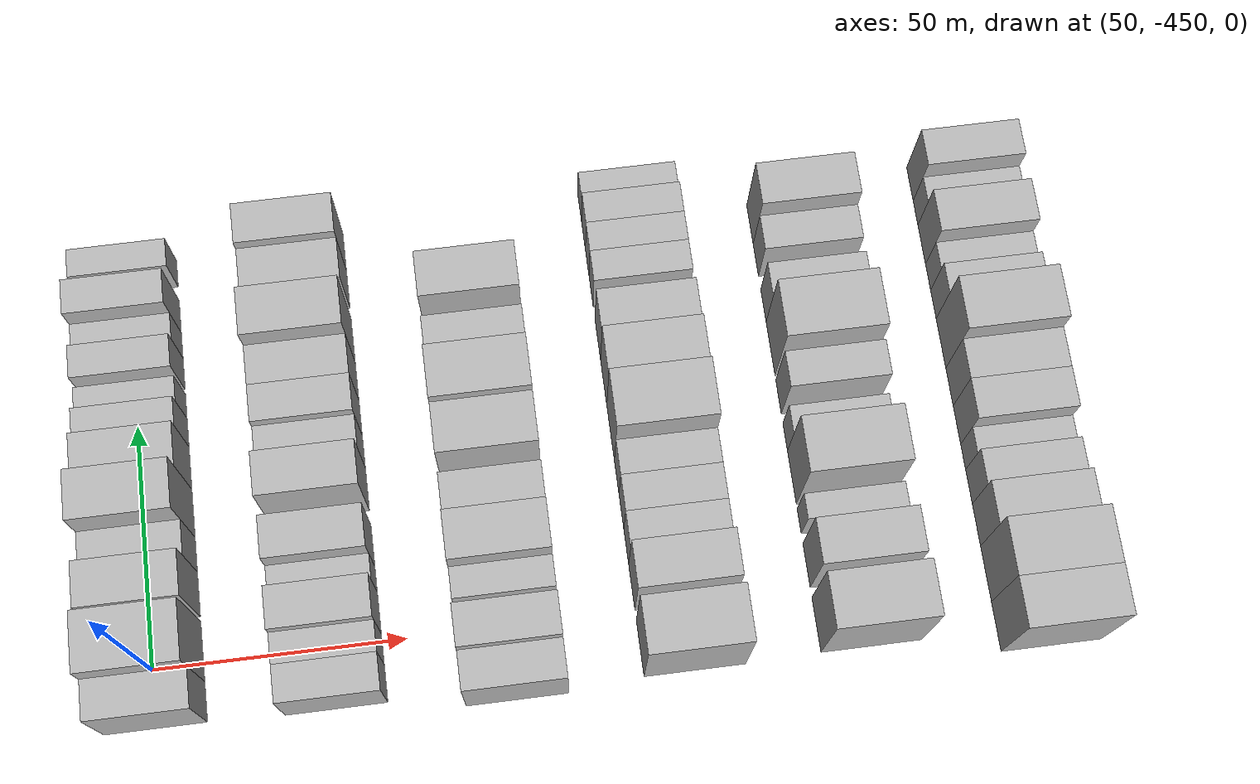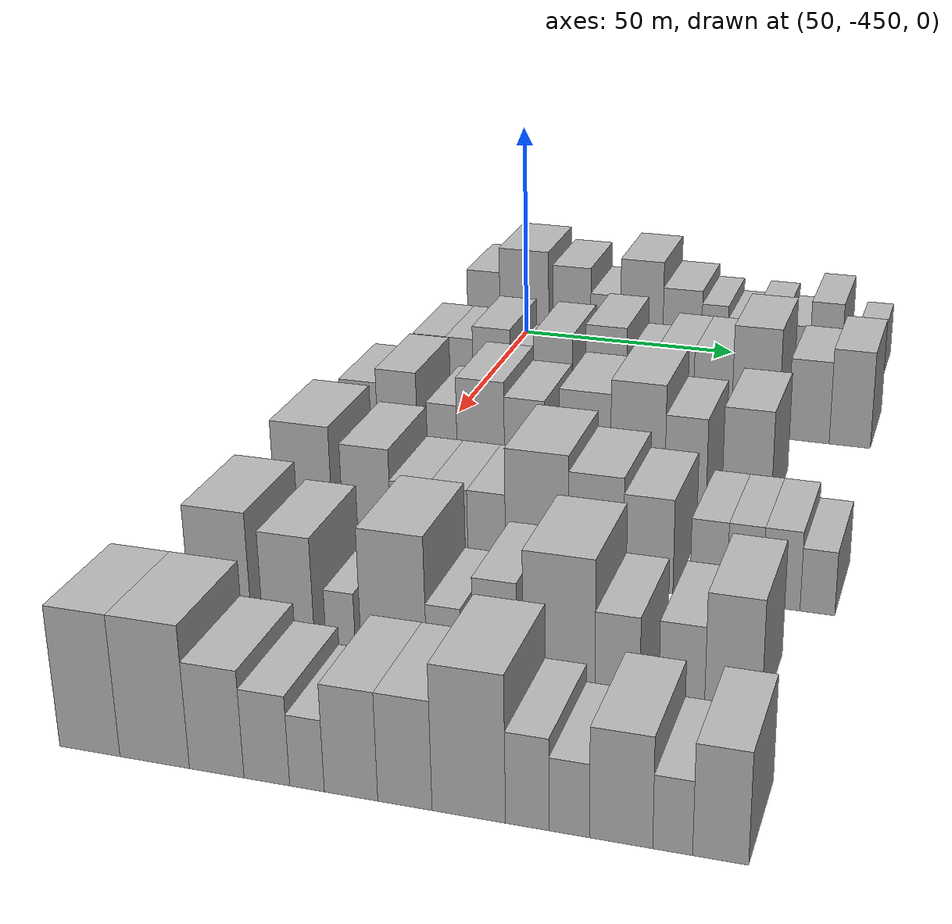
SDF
<sdf version="1.6">
 <world name="default">
  <model name="building_14">
   <static>1</static>
   <pose>50.0000 -457.3623 0 0.000000 0.000000 0.000000</pose>
   <link name="link">
    <pose>0 0 9.00 0 0 0</pose>
    <collision name="collision"><geometry><box><size>20.0000 7.9237 18.0000</size></box></geometry></collision>
    <visual name="visual">
     <cast_shadows>0</cast_shadows>
     <geometry><box><size>20.0000 7.9237 18.0000</size></box></geometry>
     <material>
      <script>
       <uri>model://HANNAS_wall/materials/scripts</uri>
       <uri>model://HANNAS_wall/materials/textures</uri>
       <name>vrc/HANNAS_wall</name>
      </script>
     </material>
    </visual>
   </link>
  </model>
  <model name="building_15">
   <static>1</static>
   <pose>50.0000 -447.4712 0 0.000000 0.000000 0.000000</pose>
   <link name="link">
    <pose>0 0 12.00 0 0 0</pose>
    <collision name="collision"><geometry><box><size>20.0000 11.8585 24.0000</size></box></geometry></collision>
    <visual name="visual">
     <cast_shadows>0</cast_shadows>
     <geometry><box><size>20.0000 11.8585 24.0000</size></box></geometry>
     <material>
      <script>
       <uri>model://HANNAS_wall/materials/scripts</uri>
       <uri>model://HANNAS_wall/materials/textures</uri>
       <name>vrc/HANNAS_wall</name>
      </script>
     </material>
    </visual>
   </link>
  </model>
  <model name="building_16">
   <static>1</static>
   <pose>50.0000 -436.0148 0 0.000000 0.000000 0.000000</pose>
   <link name="link">
    <pose>0 0 10.50 0 0 0</pose>
    <collision name="collision"><geometry><box><size>20.0000 9.0544 21.0000</size></box></geometry></collision>
    <visual name="visual">
     <cast_shadows>0</cast_shadows>
     <geometry><box><size>20.0000 9.0544 21.0000</size></box></geometry>
     <material>
      <script>
       <uri>model://HANNAS_wall/materials/scripts</uri>
       <uri>model://HANNAS_wall/materials/textures</uri>
       <name>vrc/HANNAS_wall</name>
      </script>
     </material>
    </visual>
   </link>
  </model>
  <model name="building_17">
   <static>1</static>
   <pose>50.0000 -427.9351 0 0.000000 0.000000 0.000000</pose>
   <link name="link">
    <pose>0 0 7.50 0 0 0</pose>
    <collision name="collision"><geometry><box><size>20.0000 7.1049 15.0000</size></box></geometry></collision>
    <visual name="visual">
     <cast_shadows>0</cast_shadows>
     <geometry><box><size>20.0000 7.1049 15.0000</size></box></geometry>
     <material>
      <script>
       <uri>model://HANNAS_wall/materials/scripts</uri>
       <uri>model://HANNAS_wall/materials/textures</uri>
       <name>vrc/HANNAS_wall</name>
      </script>
     </material>
    </visual>
   </link>
  </model>
  <model name="building_18">
   <static>1</static>
   <pose>50.0000 -419.4042 0 0.000000 0.000000 0.000000</pose>
   <link name="link">
    <pose>0 0 12.00 0 0 0</pose>
    <collision name="collision"><geometry><box><size>20.0000 9.9570 24.0000</size></box></geometry></collision>
    <visual name="visual">
     <cast_shadows>0</cast_shadows>
     <geometry><box><size>20.0000 9.9570 24.0000</size></box></geometry>
     <material>
      <script>
       <uri>model://HANNAS_wall/materials/scripts</uri>
       <uri>model://HANNAS_wall/materials/textures</uri>
       <name>vrc/HANNAS_wall</name>
      </script>
     </material>
    </visual>
   </link>
  </model>
  <model name="building_19">
   <static>1</static>
   <pose>50.0000 -409.9322 0 0.000000 0.000000 0.000000</pose>
   <link name="link">
    <pose>0 0 9.00 0 0 0</pose>
    <collision name="collision"><geometry><box><size>20.0000 8.9870 18.0000</size></box></geometry></collision>
    <visual name="visual">
     <cast_shadows>0</cast_shadows>
     <geometry><box><size>20.0000 8.9870 18.0000</size></box></geometry>
     <material>
      <script>
       <uri>model://HANNAS_wall/materials/scripts</uri>
       <uri>model://HANNAS_wall/materials/textures</uri>
       <name>vrc/HANNAS_wall</name>
      </script>
     </material>
    </visual>
   </link>
  </model>
  <model name="building_20">
   <static>1</static>
   <pose>50.0000 -402.4324 0 0.000000 0.000000 0.000000</pose>
   <link name="link">
    <pose>0 0 7.50 0 0 0</pose>
    <collision name="collision"><geometry><box><size>20.0000 6.0127 15.0000</size></box></geometry></collision>
    <visual name="visual">
     <cast_shadows>0</cast_shadows>
     <geometry><box><size>20.0000 6.0127 15.0000</size></box></geometry>
     <material>
      <script>
       <uri>model://HANNAS_wall/materials/scripts</uri>
       <uri>model://HANNAS_wall/materials/textures</uri>
       <name>vrc/HANNAS_wall</name>
      </script>
     </material>
    </visual>
   </link>
  </model>
  <model name="building_21">
   <static>1</static>
   <pose>50.0000 -396.7875 0 0.000000 0.000000 0.000000</pose>
   <link name="link">
    <pose>0 0 6.00 0 0 0</pose>
    <collision name="collision"><geometry><box><size>20.0000 5.2770 12.0000</size></box></geometry></collision>
    <visual name="visual">
     <cast_shadows>0</cast_shadows>
     <geometry><box><size>20.0000 5.2770 12.0000</size></box></geometry>
     <material>
      <script>
       <uri>model://HANNAS_wall/materials/scripts</uri>
       <uri>model://HANNAS_wall/materials/textures</uri>
       <name>vrc/HANNAS_wall</name>
      </script>
     </material>
    </visual>
   </link>
  </model>
  <model name="building_22">
   <static>1</static>
   <pose>50.0000 -389.7473 0 0.000000 0.000000 0.000000</pose>
   <link name="link">
    <pose>0 0 7.50 0 0 0</pose>
    <collision name="collision"><geometry><box><size>20.0000 6.8035 15.0000</size></box></geometry></collision>
    <visual name="visual">
     <cast_shadows>0</cast_shadows>
     <geometry><box><size>20.0000 6.8035 15.0000</size></box></geometry>
     <material>
      <script>
       <uri>model://HANNAS_wall/materials/scripts</uri>
       <uri>model://HANNAS_wall/materials/textures</uri>
       <name>vrc/HANNAS_wall</name>
      </script>
     </material>
    </visual>
   </link>
  </model>
  <model name="building_23">
   <static>1</static>
   <pose>50.0000 -383.5608 0 0.000000 0.000000 0.000000</pose>
   <link name="link">
    <pose>0 0 6.00 0 0 0</pose>
    <collision name="collision"><geometry><box><size>20.0000 5.5695 12.0000</size></box></geometry></collision>
    <visual name="visual">
     <cast_shadows>0</cast_shadows>
     <geometry><box><size>20.0000 5.5695 12.0000</size></box></geometry>
     <material>
      <script>
       <uri>model://HANNAS_wall/materials/scripts</uri>
       <uri>model://HANNAS_wall/materials/textures</uri>
       <name>vrc/HANNAS_wall</name>
      </script>
     </material>
    </visual>
   </link>
  </model>
  <model name="building_24">
   <static>1</static>
   <pose>50.0000 -377.1747 0 0.000000 0.000000 0.000000</pose>
   <link name="link">
    <pose>0 0 9.00 0 0 0</pose>
    <collision name="collision"><geometry><box><size>20.0000 7.2027 18.0000</size></box></geometry></collision>
    <visual name="visual">
     <cast_shadows>0</cast_shadows>
     <geometry><box><size>20.0000 7.2027 18.0000</size></box></geometry>
     <material>
      <script>
       <uri>model://HANNAS_wall/materials/scripts</uri>
       <uri>model://HANNAS_wall/materials/textures</uri>
       <name>vrc/HANNAS_wall</name>
      </script>
     </material>
    </visual>
   </link>
  </model>
  <model name="building_25">
   <static>1</static>
   <pose>50.0000 -367.6038 0 0.000000 0.000000 0.000000</pose>
   <link name="link">
    <pose>0 0 6.00 0 0 0</pose>
    <collision name="collision"><geometry><box><size>20.0000 5.9390 12.0000</size></box></geometry></collision>
    <visual name="visual">
     <cast_shadows>0</cast_shadows>
     <geometry><box><size>20.0000 5.9390 12.0000</size></box></geometry>
     <material>
      <script>
       <uri>model://HANNAS_wall/materials/scripts</uri>
       <uri>model://HANNAS_wall/materials/textures</uri>
       <name>vrc/HANNAS_wall</name>
      </script>
     </material>
    </visual>
   </link>
  </model>
  <model name="building_148">
   <static>1</static>
   <pose>85.0000 -458.2104 0 0.000000 0.000000 0.000000</pose>
   <link name="link">
    <pose>0 0 7.50 0 0 0</pose>
    <collision name="collision"><geometry><box><size>20.0000 7.3771 15.0000</size></box></geometry></collision>
    <visual name="visual">
     <cast_shadows>0</cast_shadows>
     <geometry><box><size>20.0000 7.3771 15.0000</size></box></geometry>
     <material>
      <script>
       <uri>model://HANNAS_wall/materials/scripts</uri>
       <uri>model://HANNAS_wall/materials/textures</uri>
       <name>vrc/HANNAS_wall</name>
      </script>
     </material>
    </visual>
   </link>
  </model>
  <model name="building_149">
   <static>1</static>
   <pose>85.0000 -451.4634 0 0.000000 0.000000 0.000000</pose>
   <link name="link">
    <pose>0 0 7.50 0 0 0</pose>
    <collision name="collision"><geometry><box><size>20.0000 6.1169 15.0000</size></box></geometry></collision>
    <visual name="visual">
     <cast_shadows>0</cast_shadows>
     <geometry><box><size>20.0000 6.1169 15.0000</size></box></geometry>
     <material>
      <script>
       <uri>model://HANNAS_wall/materials/scripts</uri>
       <uri>model://HANNAS_wall/materials/textures</uri>
       <name>vrc/HANNAS_wall</name>
      </script>
     </material>
    </visual>
   </link>
  </model>
  <model name="building_150">
   <static>1</static>
   <pose>85.0000 -444.2012 0 0.000000 0.000000 0.000000</pose>
   <link name="link">
    <pose>0 0 9.00 0 0 0</pose>
    <collision name="collision"><geometry><box><size>20.0000 8.4076 18.0000</size></box></geometry></collision>
    <visual name="visual">
     <cast_shadows>0</cast_shadows>
     <geometry><box><size>20.0000 8.4076 18.0000</size></box></geometry>
     <material>
      <script>
       <uri>model://HANNAS_wall/materials/scripts</uri>
       <uri>model://HANNAS_wall/materials/textures</uri>
       <name>vrc/HANNAS_wall</name>
      </script>
     </material>
    </visual>
   </link>
  </model>
  <model name="building_151">
   <static>1</static>
   <pose>85.0000 -437.3884 0 0.000000 0.000000 0.000000</pose>
   <link name="link">
    <pose>0 0 6.00 0 0 0</pose>
    <collision name="collision"><geometry><box><size>20.0000 5.2180 12.0000</size></box></geometry></collision>
    <visual name="visual">
     <cast_shadows>0</cast_shadows>
     <geometry><box><size>20.0000 5.2180 12.0000</size></box></geometry>
     <material>
      <script>
       <uri>model://HANNAS_wall/materials/scripts</uri>
       <uri>model://HANNAS_wall/materials/textures</uri>
       <name>vrc/HANNAS_wall</name>
      </script>
     </material>
    </visual>
   </link>
  </model>
  <model name="building_152">
   <static>1</static>
   <pose>85.0000 -430.5078 0 0.000000 0.000000 0.000000</pose>
   <link name="link">
    <pose>0 0 9.00 0 0 0</pose>
    <collision name="collision"><geometry><box><size>20.0000 8.5432 18.0000</size></box></geometry></collision>
    <visual name="visual">
     <cast_shadows>0</cast_shadows>
     <geometry><box><size>20.0000 8.5432 18.0000</size></box></geometry>
     <material>
      <script>
       <uri>model://HANNAS_wall/materials/scripts</uri>
       <uri>model://HANNAS_wall/materials/textures</uri>
       <name>vrc/HANNAS_wall</name>
      </script>
     </material>
    </visual>
   </link>
  </model>
  <model name="building_153">
   <static>1</static>
   <pose>85.0000 -418.7952 0 0.000000 0.000000 0.000000</pose>
   <link name="link">
    <pose>0 0 10.50 0 0 0</pose>
    <collision name="collision"><geometry><box><size>20.0000 8.8820 21.0000</size></box></geometry></collision>
    <visual name="visual">
     <cast_shadows>0</cast_shadows>
     <geometry><box><size>20.0000 8.8820 21.0000</size></box></geometry>
     <material>
      <script>
       <uri>model://HANNAS_wall/materials/scripts</uri>
       <uri>model://HANNAS_wall/materials/textures</uri>
       <name>vrc/HANNAS_wall</name>
      </script>
     </material>
    </visual>
   </link>
  </model>
  <model name="building_154">
   <static>1</static>
   <pose>85.0000 -410.9439 0 0.000000 0.000000 0.000000</pose>
   <link name="link">
    <pose>0 0 7.50 0 0 0</pose>
    <collision name="collision"><geometry><box><size>20.0000 6.8206 15.0000</size></box></geometry></collision>
    <visual name="visual">
     <cast_shadows>0</cast_shadows>
     <geometry><box><size>20.0000 6.8206 15.0000</size></box></geometry>
     <material>
      <script>
       <uri>model://HANNAS_wall/materials/scripts</uri>
       <uri>model://HANNAS_wall/materials/textures</uri>
       <name>vrc/HANNAS_wall</name>
      </script>
     </material>
    </visual>
   </link>
  </model>
  <model name="building_155">
   <static>1</static>
   <pose>85.0000 -403.7427 0 0.000000 0.000000 0.000000</pose>
   <link name="link">
    <pose>0 0 9.00 0 0 0</pose>
    <collision name="collision"><geometry><box><size>20.0000 7.5818 18.0000</size></box></geometry></collision>
    <visual name="visual">
     <cast_shadows>0</cast_shadows>
     <geometry><box><size>20.0000 7.5818 18.0000</size></box></geometry>
     <material>
      <script>
       <uri>model://HANNAS_wall/materials/scripts</uri>
       <uri>model://HANNAS_wall/materials/textures</uri>
       <name>vrc/HANNAS_wall</name>
      </script>
     </material>
    </visual>
   </link>
  </model>
  <model name="building_156">
   <static>1</static>
   <pose>85.0000 -395.8663 0 0.000000 0.000000 0.000000</pose>
   <link name="link">
    <pose>0 0 9.00 0 0 0</pose>
    <collision name="collision"><geometry><box><size>20.0000 8.1711 18.0000</size></box></geometry></collision>
    <visual name="visual">
     <cast_shadows>0</cast_shadows>
     <geometry><box><size>20.0000 8.1711 18.0000</size></box></geometry>
     <material>
      <script>
       <uri>model://HANNAS_wall/materials/scripts</uri>
       <uri>model://HANNAS_wall/materials/textures</uri>
       <name>vrc/HANNAS_wall</name>
      </script>
     </material>
    </visual>
   </link>
  </model>
  <model name="building_157">
   <static>1</static>
   <pose>85.0000 -386.8179 0 0.000000 0.000000 0.000000</pose>
   <link name="link">
    <pose>0 0 12.00 0 0 0</pose>
    <collision name="collision"><geometry><box><size>20.0000 9.9256 24.0000</size></box></geometry></collision>
    <visual name="visual">
     <cast_shadows>0</cast_shadows>
     <geometry><box><size>20.0000 9.9256 24.0000</size></box></geometry>
     <material>
      <script>
       <uri>model://HANNAS_wall/materials/scripts</uri>
       <uri>model://HANNAS_wall/materials/textures</uri>
       <name>vrc/HANNAS_wall</name>
      </script>
     </material>
    </visual>
   </link>
  </model>
  <model name="building_158">
   <static>1</static>
   <pose>85.0000 -375.5778 0 0.000000 0.000000 0.000000</pose>
   <link name="link">
    <pose>0 0 9.00 0 0 0</pose>
    <collision name="collision"><geometry><box><size>20.0000 8.5546 18.0000</size></box></geometry></collision>
    <visual name="visual">
     <cast_shadows>0</cast_shadows>
     <geometry><box><size>20.0000 8.5546 18.0000</size></box></geometry>
     <material>
      <script>
       <uri>model://HANNAS_wall/materials/scripts</uri>
       <uri>model://HANNAS_wall/materials/textures</uri>
       <name>vrc/HANNAS_wall</name>
      </script>
     </material>
    </visual>
   </link>
  </model>
  <model name="building_159">
   <static>1</static>
   <pose>85.0000 -367.0770 0 0.000000 0.000000 0.000000</pose>
   <link name="link">
    <pose>0 0 10.50 0 0 0</pose>
    <collision name="collision"><geometry><box><size>20.0000 8.4471 21.0000</size></box></geometry></collision>
    <visual name="visual">
     <cast_shadows>0</cast_shadows>
     <geometry><box><size>20.0000 8.4471 21.0000</size></box></geometry>
     <material>
      <script>
       <uri>model://HANNAS_wall/materials/scripts</uri>
       <uri>model://HANNAS_wall/materials/textures</uri>
       <name>vrc/HANNAS_wall</name>
      </script>
     </material>
    </visual>
   </link>
  </model>
  <model name="building_269">
   <static>1</static>
   <pose>120.0000 -460.6186 0 0.000000 0.000000 0.000000</pose>
   <link name="link">
    <pose>0 0 9.00 0 0 0</pose>
    <collision name="collision"><geometry><box><size>20.0000 7.7747 18.0000</size></box></geometry></collision>
    <visual name="visual">
     <cast_shadows>0</cast_shadows>
     <geometry><box><size>20.0000 7.7747 18.0000</size></box></geometry>
     <material>
      <script>
       <uri>model://HANNAS_wall/materials/scripts</uri>
       <uri>model://HANNAS_wall/materials/textures</uri>
       <name>vrc/HANNAS_wall</name>
      </script>
     </material>
    </visual>
   </link>
  </model>
  <model name="building_270">
   <static>1</static>
   <pose>120.0000 -452.5234 0 0.000000 0.000000 0.000000</pose>
   <link name="link">
    <pose>0 0 10.50 0 0 0</pose>
    <collision name="collision"><geometry><box><size>20.0000 8.4158 21.0000</size></box></geometry></collision>
    <visual name="visual">
     <cast_shadows>0</cast_shadows>
     <geometry><box><size>20.0000 8.4158 21.0000</size></box></geometry>
     <material>
      <script>
       <uri>model://HANNAS_wall/materials/scripts</uri>
       <uri>model://HANNAS_wall/materials/textures</uri>
       <name>vrc/HANNAS_wall</name>
      </script>
     </material>
    </visual>
   </link>
  </model>
  <model name="building_271">
   <static>1</static>
   <pose>120.0000 -443.2011 0 0.000000 0.000000 0.000000</pose>
   <link name="link">
    <pose>0 0 7.50 0 0 0</pose>
    <collision name="collision"><geometry><box><size>20.0000 6.2288 15.0000</size></box></geometry></collision>
    <visual name="visual">
     <cast_shadows>0</cast_shadows>
     <geometry><box><size>20.0000 6.2288 15.0000</size></box></geometry>
     <material>
      <script>
       <uri>model://HANNAS_wall/materials/scripts</uri>
       <uri>model://HANNAS_wall/materials/textures</uri>
       <name>vrc/HANNAS_wall</name>
      </script>
     </material>
    </visual>
   </link>
  </model>
  <model name="building_272">
   <static>1</static>
   <pose>120.0000 -435.1914 0 0.000000 0.000000 0.000000</pose>
   <link name="link">
    <pose>0 0 10.50 0 0 0</pose>
    <collision name="collision"><geometry><box><size>20.0000 9.7905 21.0000</size></box></geometry></collision>
    <visual name="visual">
     <cast_shadows>0</cast_shadows>
     <geometry><box><size>20.0000 9.7905 21.0000</size></box></geometry>
     <material>
      <script>
       <uri>model://HANNAS_wall/materials/scripts</uri>
       <uri>model://HANNAS_wall/materials/textures</uri>
       <name>vrc/HANNAS_wall</name>
      </script>
     </material>
    </visual>
   </link>
  </model>
  <model name="building_273">
   <static>1</static>
   <pose>120.0000 -426.2014 0 0.000000 0.000000 0.000000</pose>
   <link name="link">
    <pose>0 0 9.00 0 0 0</pose>
    <collision name="collision"><geometry><box><size>20.0000 8.1894 18.0000</size></box></geometry></collision>
    <visual name="visual">
     <cast_shadows>0</cast_shadows>
     <geometry><box><size>20.0000 8.1894 18.0000</size></box></geometry>
     <material>
      <script>
       <uri>model://HANNAS_wall/materials/scripts</uri>
       <uri>model://HANNAS_wall/materials/textures</uri>
       <name>vrc/HANNAS_wall</name>
      </script>
     </material>
    </visual>
   </link>
  </model>
  <model name="building_274">
   <static>1</static>
   <pose>120.0000 -413.9976 0 0.000000 0.000000 0.000000</pose>
   <link name="link">
    <pose>0 0 10.50 0 0 0</pose>
    <collision name="collision"><geometry><box><size>20.0000 10.2182 21.0000</size></box></geometry></collision>
    <visual name="visual">
     <cast_shadows>0</cast_shadows>
     <geometry><box><size>20.0000 10.2182 21.0000</size></box></geometry>
     <material>
      <script>
       <uri>model://HANNAS_wall/materials/scripts</uri>
       <uri>model://HANNAS_wall/materials/textures</uri>
       <name>vrc/HANNAS_wall</name>
      </script>
     </material>
    </visual>
   </link>
  </model>
  <model name="building_275">
   <static>1</static>
   <pose>120.0000 -403.5157 0 0.000000 0.000000 0.000000</pose>
   <link name="link">
    <pose>0 0 12.00 0 0 0</pose>
    <collision name="collision"><geometry><box><size>20.0000 10.7457 24.0000</size></box></geometry></collision>
    <visual name="visual">
     <cast_shadows>0</cast_shadows>
     <geometry><box><size>20.0000 10.7457 24.0000</size></box></geometry>
     <material>
      <script>
       <uri>model://HANNAS_wall/materials/scripts</uri>
       <uri>model://HANNAS_wall/materials/textures</uri>
       <name>vrc/HANNAS_wall</name>
      </script>
     </material>
    </visual>
   </link>
  </model>
  <model name="building_276">
   <static>1</static>
   <pose>120.0000 -394.0708 0 0.000000 0.000000 0.000000</pose>
   <link name="link">
    <pose>0 0 9.00 0 0 0</pose>
    <collision name="collision"><geometry><box><size>20.0000 8.1440 18.0000</size></box></geometry></collision>
    <visual name="visual">
     <cast_shadows>0</cast_shadows>
     <geometry><box><size>20.0000 8.1440 18.0000</size></box></geometry>
     <material>
      <script>
       <uri>model://HANNAS_wall/materials/scripts</uri>
       <uri>model://HANNAS_wall/materials/textures</uri>
       <name>vrc/HANNAS_wall</name>
      </script>
     </material>
    </visual>
   </link>
  </model>
  <model name="building_277">
   <static>1</static>
   <pose>120.0000 -382.2426 0 0.000000 0.000000 0.000000</pose>
   <link name="link">
    <pose>0 0 10.50 0 0 0</pose>
    <collision name="collision"><geometry><box><size>20.0000 9.5125 21.0000</size></box></geometry></collision>
    <visual name="visual">
     <cast_shadows>0</cast_shadows>
     <geometry><box><size>20.0000 9.5125 21.0000</size></box></geometry>
     <material>
      <script>
       <uri>model://HANNAS_wall/materials/scripts</uri>
       <uri>model://HANNAS_wall/materials/textures</uri>
       <name>vrc/HANNAS_wall</name>
      </script>
     </material>
    </visual>
   </link>
  </model>
  <model name="building_381">
   <static>1</static>
   <pose>155.0000 -457.5387 0 0.000000 0.000000 0.000000</pose>
   <link name="link">
    <pose>0 0 12.00 0 0 0</pose>
    <collision name="collision"><geometry><box><size>20.0000 11.2231 24.0000</size></box></geometry></collision>
    <visual name="visual">
     <cast_shadows>0</cast_shadows>
     <geometry><box><size>20.0000 11.2231 24.0000</size></box></geometry>
     <material>
      <script>
       <uri>model://HANNAS_wall/materials/scripts</uri>
       <uri>model://HANNAS_wall/materials/textures</uri>
       <name>vrc/HANNAS_wall</name>
      </script>
     </material>
    </visual>
   </link>
  </model>
  <model name="building_382">
   <static>1</static>
   <pose>155.0000 -445.2981 0 0.000000 0.000000 0.000000</pose>
   <link name="link">
    <pose>0 0 10.50 0 0 0</pose>
    <collision name="collision"><geometry><box><size>20.0000 9.2580 21.0000</size></box></geometry></collision>
    <visual name="visual">
     <cast_shadows>0</cast_shadows>
     <geometry><box><size>20.0000 9.2580 21.0000</size></box></geometry>
     <material>
      <script>
       <uri>model://HANNAS_wall/materials/scripts</uri>
       <uri>model://HANNAS_wall/materials/textures</uri>
       <name>vrc/HANNAS_wall</name>
      </script>
     </material>
    </visual>
   </link>
  </model>
  <model name="building_383">
   <static>1</static>
   <pose>155.0000 -437.0570 0 0.000000 0.000000 0.000000</pose>
   <link name="link">
    <pose>0 0 7.50 0 0 0</pose>
    <collision name="collision"><geometry><box><size>20.0000 7.2243 15.0000</size></box></geometry></collision>
    <visual name="visual">
     <cast_shadows>0</cast_shadows>
     <geometry><box><size>20.0000 7.2243 15.0000</size></box></geometry>
     <material>
      <script>
       <uri>model://HANNAS_wall/materials/scripts</uri>
       <uri>model://HANNAS_wall/materials/textures</uri>
       <name>vrc/HANNAS_wall</name>
      </script>
     </material>
    </visual>
   </link>
  </model>
  <model name="building_384">
   <static>1</static>
   <pose>155.0000 -429.7996 0 0.000000 0.000000 0.000000</pose>
   <link name="link">
    <pose>0 0 7.50 0 0 0</pose>
    <collision name="collision"><geometry><box><size>20.0000 7.2904 15.0000</size></box></geometry></collision>
    <visual name="visual">
     <cast_shadows>0</cast_shadows>
     <geometry><box><size>20.0000 7.2904 15.0000</size></box></geometry>
     <material>
      <script>
       <uri>model://HANNAS_wall/materials/scripts</uri>
       <uri>model://HANNAS_wall/materials/textures</uri>
       <name>vrc/HANNAS_wall</name>
      </script>
     </material>
    </visual>
   </link>
  </model>
  <model name="building_385">
   <static>1</static>
   <pose>155.0000 -422.6323 0 0.000000 0.000000 0.000000</pose>
   <link name="link">
    <pose>0 0 7.50 0 0 0</pose>
    <collision name="collision"><geometry><box><size>20.0000 7.0442 15.0000</size></box></geometry></collision>
    <visual name="visual">
     <cast_shadows>0</cast_shadows>
     <geometry><box><size>20.0000 7.0442 15.0000</size></box></geometry>
     <material>
      <script>
       <uri>model://HANNAS_wall/materials/scripts</uri>
       <uri>model://HANNAS_wall/materials/textures</uri>
       <name>vrc/HANNAS_wall</name>
      </script>
     </material>
    </visual>
   </link>
  </model>
  <model name="building_386">
   <static>1</static>
   <pose>155.0000 -413.3001 0 0.000000 0.000000 0.000000</pose>
   <link name="link">
    <pose>0 0 12.00 0 0 0</pose>
    <collision name="collision"><geometry><box><size>20.0000 11.6203 24.0000</size></box></geometry></collision>
    <visual name="visual">
     <cast_shadows>0</cast_shadows>
     <geometry><box><size>20.0000 11.6203 24.0000</size></box></geometry>
     <material>
      <script>
       <uri>model://HANNAS_wall/materials/scripts</uri>
       <uri>model://HANNAS_wall/materials/textures</uri>
       <name>vrc/HANNAS_wall</name>
      </script>
     </material>
    </visual>
   </link>
  </model>
  <model name="building_387">
   <static>1</static>
   <pose>155.0000 -402.5562 0 0.000000 0.000000 0.000000</pose>
   <link name="link">
    <pose>0 0 10.50 0 0 0</pose>
    <collision name="collision"><geometry><box><size>20.0000 9.8675 21.0000</size></box></geometry></collision>
    <visual name="visual">
     <cast_shadows>0</cast_shadows>
     <geometry><box><size>20.0000 9.8675 21.0000</size></box></geometry>
     <material>
      <script>
       <uri>model://HANNAS_wall/materials/scripts</uri>
       <uri>model://HANNAS_wall/materials/textures</uri>
       <name>vrc/HANNAS_wall</name>
      </script>
     </material>
    </visual>
   </link>
  </model>
  <model name="building_388">
   <static>1</static>
   <pose>155.0000 -393.1890 0 0.000000 0.000000 0.000000</pose>
   <link name="link">
    <pose>0 0 9.00 0 0 0</pose>
    <collision name="collision"><geometry><box><size>20.0000 8.8669 18.0000</size></box></geometry></collision>
    <visual name="visual">
     <cast_shadows>0</cast_shadows>
     <geometry><box><size>20.0000 8.8669 18.0000</size></box></geometry>
     <material>
      <script>
       <uri>model://HANNAS_wall/materials/scripts</uri>
       <uri>model://HANNAS_wall/materials/textures</uri>
       <name>vrc/HANNAS_wall</name>
      </script>
     </material>
    </visual>
   </link>
  </model>
  <model name="building_389">
   <static>1</static>
   <pose>155.0000 -382.5203 0 0.000000 0.000000 0.000000</pose>
   <link name="link">
    <pose>0 0 7.50 0 0 0</pose>
    <collision name="collision"><geometry><box><size>20.0000 6.4706 15.0000</size></box></geometry></collision>
    <visual name="visual">
     <cast_shadows>0</cast_shadows>
     <geometry><box><size>20.0000 6.4706 15.0000</size></box></geometry>
     <material>
      <script>
       <uri>model://HANNAS_wall/materials/scripts</uri>
       <uri>model://HANNAS_wall/materials/textures</uri>
       <name>vrc/HANNAS_wall</name>
      </script>
     </material>
    </visual>
   </link>
  </model>
  <model name="building_390">
   <static>1</static>
   <pose>155.0000 -376.1931 0 0.000000 0.000000 0.000000</pose>
   <link name="link">
    <pose>0 0 7.50 0 0 0</pose>
    <collision name="collision"><geometry><box><size>20.0000 6.1838 15.0000</size></box></geometry></collision>
    <visual name="visual">
     <cast_shadows>0</cast_shadows>
     <geometry><box><size>20.0000 6.1838 15.0000</size></box></geometry>
     <material>
      <script>
       <uri>model://HANNAS_wall/materials/scripts</uri>
       <uri>model://HANNAS_wall/materials/textures</uri>
       <name>vrc/HANNAS_wall</name>
      </script>
     </material>
    </visual>
   </link>
  </model>
  <model name="building_391">
   <static>1</static>
   <pose>155.0000 -369.8493 0 0.000000 0.000000 0.000000</pose>
   <link name="link">
    <pose>0 0 7.50 0 0 0</pose>
    <collision name="collision"><geometry><box><size>20.0000 6.5038 15.0000</size></box></geometry></collision>
    <visual name="visual">
     <cast_shadows>0</cast_shadows>
     <geometry><box><size>20.0000 6.5038 15.0000</size></box></geometry>
     <material>
      <script>
       <uri>model://HANNAS_wall/materials/scripts</uri>
       <uri>model://HANNAS_wall/materials/textures</uri>
       <name>vrc/HANNAS_wall</name>
      </script>
     </material>
    </visual>
   </link>
  </model>
  <model name="building_392">
   <static>1</static>
   <pose>155.0000 -363.6286 0 0.000000 0.000000 0.000000</pose>
   <link name="link">
    <pose>0 0 6.00 0 0 0</pose>
    <collision name="collision"><geometry><box><size>20.0000 5.9376 12.0000</size></box></geometry></collision>
    <visual name="visual">
     <cast_shadows>0</cast_shadows>
     <geometry><box><size>20.0000 5.9376 12.0000</size></box></geometry>
     <material>
      <script>
       <uri>model://HANNAS_wall/materials/scripts</uri>
       <uri>model://HANNAS_wall/materials/textures</uri>
       <name>vrc/HANNAS_wall</name>
      </script>
     </material>
    </visual>
   </link>
  </model>
  <model name="building_503">
   <static>1</static>
   <pose>190.0000 -457.2589 0 0.000000 0.000000 0.000000</pose>
   <link name="link">
    <pose>0 0 12.00 0 0 0</pose>
    <collision name="collision"><geometry><box><size>20.0000 10.9979 24.0000</size></box></geometry></collision>
    <visual name="visual">
     <cast_shadows>0</cast_shadows>
     <geometry><box><size>20.0000 10.9979 24.0000</size></box></geometry>
     <material>
      <script>
       <uri>model://HANNAS_wall/materials/scripts</uri>
       <uri>model://HANNAS_wall/materials/textures</uri>
       <name>vrc/HANNAS_wall</name>
      </script>
     </material>
    </visual>
   </link>
  </model>
  <model name="building_504">
   <static>1</static>
   <pose>190.0000 -445.2404 0 0.000000 0.000000 0.000000</pose>
   <link name="link">
    <pose>0 0 10.50 0 0 0</pose>
    <collision name="collision"><geometry><box><size>20.0000 9.0392 21.0000</size></box></geometry></collision>
    <visual name="visual">
     <cast_shadows>0</cast_shadows>
     <geometry><box><size>20.0000 9.0392 21.0000</size></box></geometry>
     <material>
      <script>
       <uri>model://HANNAS_wall/materials/scripts</uri>
       <uri>model://HANNAS_wall/materials/textures</uri>
       <name>vrc/HANNAS_wall</name>
      </script>
     </material>
    </visual>
   </link>
  </model>
  <model name="building_505">
   <static>1</static>
   <pose>190.0000 -436.1637 0 0.000000 0.000000 0.000000</pose>
   <link name="link">
    <pose>0 0 6.00 0 0 0</pose>
    <collision name="collision"><geometry><box><size>20.0000 5.1140 12.0000</size></box></geometry></collision>
    <visual name="visual">
     <cast_shadows>0</cast_shadows>
     <geometry><box><size>20.0000 5.1140 12.0000</size></box></geometry>
     <material>
      <script>
       <uri>model://HANNAS_wall/materials/scripts</uri>
       <uri>model://HANNAS_wall/materials/textures</uri>
       <name>vrc/HANNAS_wall</name>
      </script>
     </material>
    </visual>
   </link>
  </model>
  <model name="building_506">
   <static>1</static>
   <pose>190.0000 -427.0003 0 0.000000 0.000000 0.000000</pose>
   <link name="link">
    <pose>0 0 12.00 0 0 0</pose>
    <collision name="collision"><geometry><box><size>20.0000 11.2128 24.0000</size></box></geometry></collision>
    <visual name="visual">
     <cast_shadows>0</cast_shadows>
     <geometry><box><size>20.0000 11.2128 24.0000</size></box></geometry>
     <material>
      <script>
       <uri>model://HANNAS_wall/materials/scripts</uri>
       <uri>model://HANNAS_wall/materials/textures</uri>
       <name>vrc/HANNAS_wall</name>
      </script>
     </material>
    </visual>
   </link>
  </model>
  <model name="building_507">
   <static>1</static>
   <pose>190.0000 -418.4633 0 0.000000 0.000000 0.000000</pose>
   <link name="link">
    <pose>0 0 6.00 0 0 0</pose>
    <collision name="collision"><geometry><box><size>20.0000 5.8612 12.0000</size></box></geometry></collision>
    <visual name="visual">
     <cast_shadows>0</cast_shadows>
     <geometry><box><size>20.0000 5.8612 12.0000</size></box></geometry>
     <material>
      <script>
       <uri>model://HANNAS_wall/materials/scripts</uri>
       <uri>model://HANNAS_wall/materials/textures</uri>
       <name>vrc/HANNAS_wall</name>
      </script>
     </material>
    </visual>
   </link>
  </model>
  <model name="building_508">
   <static>1</static>
   <pose>190.0000 -409.8787 0 0.000000 0.000000 0.000000</pose>
   <link name="link">
    <pose>0 0 9.00 0 0 0</pose>
    <collision name="collision"><geometry><box><size>20.0000 7.3081 18.0000</size></box></geometry></collision>
    <visual name="visual">
     <cast_shadows>0</cast_shadows>
     <geometry><box><size>20.0000 7.3081 18.0000</size></box></geometry>
     <material>
      <script>
       <uri>model://HANNAS_wall/materials/scripts</uri>
       <uri>model://HANNAS_wall/materials/textures</uri>
       <name>vrc/HANNAS_wall</name>
      </script>
     </material>
    </visual>
   </link>
  </model>
  <model name="building_509">
   <static>1</static>
   <pose>190.0000 -399.3612 0 0.000000 0.000000 0.000000</pose>
   <link name="link">
    <pose>0 0 12.00 0 0 0</pose>
    <collision name="collision"><geometry><box><size>20.0000 11.7269 24.0000</size></box></geometry></collision>
    <visual name="visual">
     <cast_shadows>0</cast_shadows>
     <geometry><box><size>20.0000 11.7269 24.0000</size></box></geometry>
     <material>
      <script>
       <uri>model://HANNAS_wall/materials/scripts</uri>
       <uri>model://HANNAS_wall/materials/textures</uri>
       <name>vrc/HANNAS_wall</name>
      </script>
     </material>
    </visual>
   </link>
  </model>
  <model name="building_510">
   <static>1</static>
   <pose>190.0000 -389.8932 0 0.000000 0.000000 0.000000</pose>
   <link name="link">
    <pose>0 0 7.50 0 0 0</pose>
    <collision name="collision"><geometry><box><size>20.0000 7.2091 15.0000</size></box></geometry></collision>
    <visual name="visual">
     <cast_shadows>0</cast_shadows>
     <geometry><box><size>20.0000 7.2091 15.0000</size></box></geometry>
     <material>
      <script>
       <uri>model://HANNAS_wall/materials/scripts</uri>
       <uri>model://HANNAS_wall/materials/textures</uri>
       <name>vrc/HANNAS_wall</name>
      </script>
     </material>
    </visual>
   </link>
  </model>
  <model name="building_511">
   <static>1</static>
   <pose>190.0000 -379.6724 0 0.000000 0.000000 0.000000</pose>
   <link name="link">
    <pose>0 0 7.50 0 0 0</pose>
    <collision name="collision"><geometry><box><size>20.0000 7.2324 15.0000</size></box></geometry></collision>
    <visual name="visual">
     <cast_shadows>0</cast_shadows>
     <geometry><box><size>20.0000 7.2324 15.0000</size></box></geometry>
     <material>
      <script>
       <uri>model://HANNAS_wall/materials/scripts</uri>
       <uri>model://HANNAS_wall/materials/textures</uri>
       <name>vrc/HANNAS_wall</name>
      </script>
     </material>
    </visual>
   </link>
  </model>
  <model name="building_512">
   <static>1</static>
   <pose>190.0000 -371.6250 0 0.000000 0.000000 0.000000</pose>
   <link name="link">
    <pose>0 0 10.50 0 0 0</pose>
    <collision name="collision"><geometry><box><size>20.0000 8.8625 21.0000</size></box></geometry></collision>
    <visual name="visual">
     <cast_shadows>0</cast_shadows>
     <geometry><box><size>20.0000 8.8625 21.0000</size></box></geometry>
     <material>
      <script>
       <uri>model://HANNAS_wall/materials/scripts</uri>
       <uri>model://HANNAS_wall/materials/textures</uri>
       <name>vrc/HANNAS_wall</name>
      </script>
     </material>
    </visual>
   </link>
  </model>
  <model name="building_630">
   <static>1</static>
   <pose>225.0000 -462.0195 0 0.000000 0.000000 0.000000</pose>
   <link name="link">
    <pose>0 0 12.00 0 0 0</pose>
    <collision name="collision"><geometry><box><size>20.0000 9.9640 24.0000</size></box></geometry></collision>
    <visual name="visual">
     <cast_shadows>0</cast_shadows>
     <geometry><box><size>20.0000 9.9640 24.0000</size></box></geometry>
     <material>
      <script>
       <uri>model://HANNAS_wall/materials/scripts</uri>
       <uri>model://HANNAS_wall/materials/textures</uri>
       <name>vrc/HANNAS_wall</name>
      </script>
     </material>
    </visual>
   </link>
  </model>
  <model name="building_631">
   <static>1</static>
   <pose>225.0000 -451.3787 0 0.000000 0.000000 0.000000</pose>
   <link name="link">
    <pose>0 0 12.00 0 0 0</pose>
    <collision name="collision"><geometry><box><size>20.0000 11.3177 24.0000</size></box></geometry></collision>
    <visual name="visual">
     <cast_shadows>0</cast_shadows>
     <geometry><box><size>20.0000 11.3177 24.0000</size></box></geometry>
     <material>
      <script>
       <uri>model://HANNAS_wall/materials/scripts</uri>
       <uri>model://HANNAS_wall/materials/textures</uri>
       <name>vrc/HANNAS_wall</name>
      </script>
     </material>
    </visual>
   </link>
  </model>
  <model name="building_632">
   <static>1</static>
   <pose>225.0000 -441.3588 0 0.000000 0.000000 0.000000</pose>
   <link name="link">
    <pose>0 0 9.00 0 0 0</pose>
    <collision name="collision"><geometry><box><size>20.0000 8.7221 18.0000</size></box></geometry></collision>
    <visual name="visual">
     <cast_shadows>0</cast_shadows>
     <geometry><box><size>20.0000 8.7221 18.0000</size></box></geometry>
     <material>
      <script>
       <uri>model://HANNAS_wall/materials/scripts</uri>
       <uri>model://HANNAS_wall/materials/textures</uri>
       <name>vrc/HANNAS_wall</name>
      </script>
     </material>
    </visual>
   </link>
  </model>
  <model name="building_633">
   <static>1</static>
   <pose>225.0000 -433.4119 0 0.000000 0.000000 0.000000</pose>
   <link name="link">
    <pose>0 0 7.50 0 0 0</pose>
    <collision name="collision"><geometry><box><size>20.0000 7.1717 15.0000</size></box></geometry></collision>
    <visual name="visual">
     <cast_shadows>0</cast_shadows>
     <geometry><box><size>20.0000 7.1717 15.0000</size></box></geometry>
     <material>
      <script>
       <uri>model://HANNAS_wall/materials/scripts</uri>
       <uri>model://HANNAS_wall/materials/textures</uri>
       <name>vrc/HANNAS_wall</name>
      </script>
     </material>
    </visual>
   </link>
  </model>
  <model name="building_634">
   <static>1</static>
   <pose>225.0000 -427.1346 0 0.000000 0.000000 0.000000</pose>
   <link name="link">
    <pose>0 0 6.00 0 0 0</pose>
    <collision name="collision"><geometry><box><size>20.0000 5.3828 12.0000</size></box></geometry></collision>
    <visual name="visual">
     <cast_shadows>0</cast_shadows>
     <geometry><box><size>20.0000 5.3828 12.0000</size></box></geometry>
     <material>
      <script>
       <uri>model://HANNAS_wall/materials/scripts</uri>
       <uri>model://HANNAS_wall/materials/textures</uri>
       <name>vrc/HANNAS_wall</name>
      </script>
     </material>
    </visual>
   </link>
  </model>
  <model name="building_635">
   <static>1</static>
   <pose>225.0000 -420.3464 0 0.000000 0.000000 0.000000</pose>
   <link name="link">
    <pose>0 0 9.00 0 0 0</pose>
    <collision name="collision"><geometry><box><size>20.0000 8.1935 18.0000</size></box></geometry></collision>
    <visual name="visual">
     <cast_shadows>0</cast_shadows>
     <geometry><box><size>20.0000 8.1935 18.0000</size></box></geometry>
     <material>
      <script>
       <uri>model://HANNAS_wall/materials/scripts</uri>
       <uri>model://HANNAS_wall/materials/textures</uri>
       <name>vrc/HANNAS_wall</name>
      </script>
     </material>
    </visual>
   </link>
  </model>
  <model name="building_636">
   <static>1</static>
   <pose>225.0000 -412.1541 0 0.000000 0.000000 0.000000</pose>
   <link name="link">
    <pose>0 0 9.00 0 0 0</pose>
    <collision name="collision"><geometry><box><size>20.0000 8.1912 18.0000</size></box></geometry></collision>
    <visual name="visual">
     <cast_shadows>0</cast_shadows>
     <geometry><box><size>20.0000 8.1912 18.0000</size></box></geometry>
     <material>
      <script>
       <uri>model://HANNAS_wall/materials/scripts</uri>
       <uri>model://HANNAS_wall/materials/textures</uri>
       <name>vrc/HANNAS_wall</name>
      </script>
     </material>
    </visual>
   </link>
  </model>
  <model name="building_637">
   <static>1</static>
   <pose>225.0000 -402.6151 0 0.000000 0.000000 0.000000</pose>
   <link name="link">
    <pose>0 0 12.00 0 0 0</pose>
    <collision name="collision"><geometry><box><size>20.0000 10.8868 24.0000</size></box></geometry></collision>
    <visual name="visual">
     <cast_shadows>0</cast_shadows>
     <geometry><box><size>20.0000 10.8868 24.0000</size></box></geometry>
     <material>
      <script>
       <uri>model://HANNAS_wall/materials/scripts</uri>
       <uri>model://HANNAS_wall/materials/textures</uri>
       <name>vrc/HANNAS_wall</name>
      </script>
     </material>
    </visual>
   </link>
  </model>
  <model name="building_638">
   <static>1</static>
   <pose>225.0000 -394.0145 0 0.000000 0.000000 0.000000</pose>
   <link name="link">
    <pose>0 0 7.50 0 0 0</pose>
    <collision name="collision"><geometry><box><size>20.0000 6.3143 15.0000</size></box></geometry></collision>
    <visual name="visual">
     <cast_shadows>0</cast_shadows>
     <geometry><box><size>20.0000 6.3143 15.0000</size></box></geometry>
     <material>
      <script>
       <uri>model://HANNAS_wall/materials/scripts</uri>
       <uri>model://HANNAS_wall/materials/textures</uri>
       <name>vrc/HANNAS_wall</name>
      </script>
     </material>
    </visual>
   </link>
  </model>
  <model name="building_639">
   <static>1</static>
   <pose>225.0000 -387.9493 0 0.000000 0.000000 0.000000</pose>
   <link name="link">
    <pose>0 0 6.00 0 0 0</pose>
    <collision name="collision"><geometry><box><size>20.0000 5.8161 12.0000</size></box></geometry></collision>
    <visual name="visual">
     <cast_shadows>0</cast_shadows>
     <geometry><box><size>20.0000 5.8161 12.0000</size></box></geometry>
     <material>
      <script>
       <uri>model://HANNAS_wall/materials/scripts</uri>
       <uri>model://HANNAS_wall/materials/textures</uri>
       <name>vrc/HANNAS_wall</name>
      </script>
     </material>
    </visual>
   </link>
  </model>
  <model name="building_640">
   <static>1</static>
   <pose>225.0000 -380.5662 0 0.000000 0.000000 0.000000</pose>
   <link name="link">
    <pose>0 0 9.00 0 0 0</pose>
    <collision name="collision"><geometry><box><size>20.0000 8.9500 18.0000</size></box></geometry></collision>
    <visual name="visual">
     <cast_shadows>0</cast_shadows>
     <geometry><box><size>20.0000 8.9500 18.0000</size></box></geometry>
     <material>
      <script>
       <uri>model://HANNAS_wall/materials/scripts</uri>
       <uri>model://HANNAS_wall/materials/textures</uri>
       <name>vrc/HANNAS_wall</name>
      </script>
     </material>
    </visual>
   </link>
  </model>
  <model name="building_641">
   <static>1</static>
   <pose>225.0000 -373.3085 0 0.000000 0.000000 0.000000</pose>
   <link name="link">
    <pose>0 0 6.00 0 0 0</pose>
    <collision name="collision"><geometry><box><size>20.0000 5.5656 12.0000</size></box></geometry></collision>
    <visual name="visual">
     <cast_shadows>0</cast_shadows>
     <geometry><box><size>20.0000 5.5656 12.0000</size></box></geometry>
     <material>
      <script>
       <uri>model://HANNAS_wall/materials/scripts</uri>
       <uri>model://HANNAS_wall/materials/textures</uri>
       <name>vrc/HANNAS_wall</name>
      </script>
     </material>
    </visual>
   </link>
  </model>
  <model name="building_642">
   <static>1</static>
   <pose>225.0000 -366.6611 0 0.000000 0.000000 0.000000</pose>
   <link name="link">
    <pose>0 0 9.00 0 0 0</pose>
    <collision name="collision"><geometry><box><size>20.0000 7.7292 18.0000</size></box></geometry></collision>
    <visual name="visual">
     <cast_shadows>0</cast_shadows>
     <geometry><box><size>20.0000 7.7292 18.0000</size></box></geometry>
     <material>
      <script>
       <uri>model://HANNAS_wall/materials/scripts</uri>
       <uri>model://HANNAS_wall/materials/textures</uri>
       <name>vrc/HANNAS_wall</name>
      </script>
     </material>
    </visual>
   </link>
  </model>
 </world>
</sdf>
